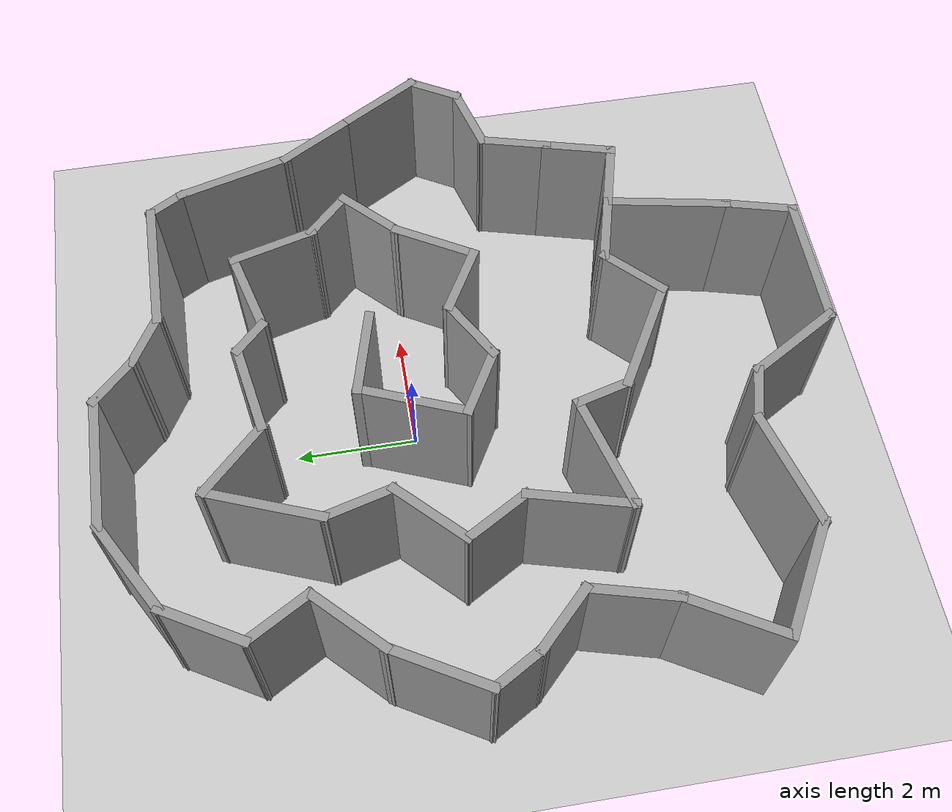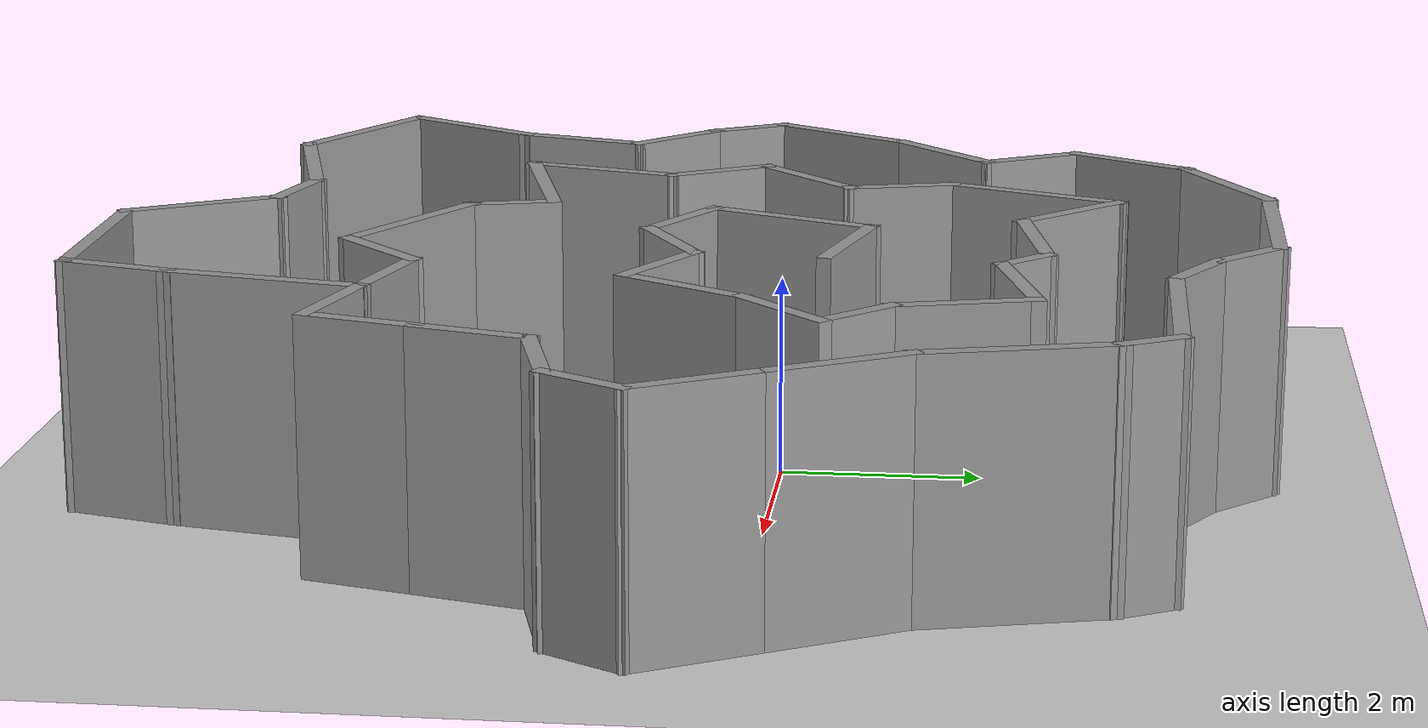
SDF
<sdf version="1.6">
 <world name="default">
  <light name="sun" type="directional">
   <pose>0 0 10 0 -0 0</pose>
   <diffuse>0.8 0.8 0.8 1</diffuse>
   <specular>0.2 0.2 0.2 1</specular>
   <attenuation>
    <range>1000</range>
    <constant>0.9</constant>
    <linear>0.01</linear>
    <quadratic>0.001</quadratic>
   </attenuation>
   <direction>-0.5 0.1 -0.9</direction>
  </light>
  <model name="ground_plane">
   <static>1</static>
   <link name="link">
    <collision name="collision">
     <geometry><plane><normal>0 0 1</normal><size>100 100</size></plane></geometry>
     <surface>
      <contact><collide_bitmask>65535</collide_bitmask></contact>
      <friction><ode><mu>100</mu><mu2>50</mu2></ode></friction>
     </surface>
    </collision>
    <visual name="visual">
     <cast_shadows>0</cast_shadows>
     <geometry><plane><normal>0 0 1</normal><size>100 100</size></plane></geometry>
     <material>
      <script><uri>file://media/materials/scripts/gazebo.material</uri><name>Gazebo/Grey</name></script>
     </material>
    </visual>
   </link>
  </model>
  <gravity>0 0 -9.8</gravity>
  <magnetic_field>6e-06 2.3e-05 -4.2e-05</magnetic_field>
  <atmosphere type="adiabatic"/>
  <physics name="default_physics" default="0" type="ode">
   <max_step_size>0.001</max_step_size>
   <real_time_factor>1</real_time_factor>
   <real_time_update_rate>1000</real_time_update_rate>
  </physics>
  <scene><ambient>0.4 0.4 0.4 1</ambient><background>0.7 0.7 0.7 1</background><shadows>1</shadows></scene>
  <audio><device>default</device></audio>
  <spherical_coordinates>
   <surface_model>EARTH_WGS84</surface_model>
   <latitude_deg>0</latitude_deg>
   <longitude_deg>0</longitude_deg>
   <elevation>0</elevation>
   <heading_deg>0</heading_deg>
  </spherical_coordinates>
  <model name="Spiral">
   <pose>0.29207 -0.91723 0 0 -0 0</pose>
   <link name="Wall_0">
    <collision name="Wall_0_Collision">
     <geometry><box><size>1.5 0.15 2.5</size></box></geometry>
     <pose>0 0 1.25 0 -0 0</pose>
    </collision>
    <visual name="Wall_0_Visual">
     <pose>0 0 1.25 0 -0 0</pose>
     <geometry><box><size>1.5 0.15 2.5</size></box></geometry>
     <material>
      <script><uri>file://media/materials/scripts/gazebo.material</uri><name>Gazebo/Grey</name></script>
      <ambient>1 1 1 1</ambient>
     </material>
     <meta><layer>0</layer></meta>
    </visual>
    <pose>0.104741 1.59903 0 0 -0 2.87979</pose>
   </link>
   <link name="Wall_16">
    <collision name="Wall_16_Collision">
     <geometry><box><size>1.25 0.15 2.5</size></box></geometry>
     <pose>0 0 1.25 0 -0 0</pose>
    </collision>
    <visual name="Wall_16_Visual">
     <pose>0 0 1.25 0 -0 0</pose>
     <geometry><box><size>1.25 0.15 2.5</size></box></geometry>
     <material>
      <script><uri>file://media/materials/scripts/gazebo.material</uri><name>Gazebo/Grey</name></script>
      <ambient>1 1 1 1</ambient>
     </material>
     <meta><layer>0</layer></meta>
    </visual>
    <pose>-0.709713 -0.123137 0 0 -0 -0.523599</pose>
   </link>
   <link name="Wall_17">
    <collision name="Wall_17_Collision">
     <geometry><box><size>1.25 0.15 2.5</size></box></geometry>
     <pose>0 0 1.25 0 -0 0</pose>
    </collision>
    <visual name="Wall_17_Visual">
     <pose>0 0 1.25 0 -0 0</pose>
     <geometry><box><size>1.25 0.15 2.5</size></box></geometry>
     <material>
      <script><uri>file://media/materials/scripts/gazebo.material</uri><name>Gazebo/Grey</name></script>
      <ambient>1 1 1 1</ambient>
     </material>
     <meta><layer>0</layer></meta>
    </visual>
    <pose>0.242915 -0.123137 0 0 -0 0.523599</pose>
   </link>
   <link name="Wall_18">
    <collision name="Wall_18_Collision">
     <geometry><box><size>1.25 0.15 2.5</size></box></geometry>
     <pose>0 0 1.25 0 -0 0</pose>
    </collision>
    <visual name="Wall_18_Visual">
     <pose>0 0 1.25 0 -0 0</pose>
     <geometry><box><size>1.25 0.15 2.5</size></box></geometry>
     <material>
      <script><uri>file://media/materials/scripts/gazebo.material</uri><name>Gazebo/Grey</name></script>
      <ambient>1 1 1 1</ambient>
     </material>
     <meta><layer>0</layer></meta>
    </visual>
    <pose>1.19554 -0.123137 0 0 -0 -0.523599</pose>
   </link>
   <link name="Wall_19">
    <collision name="Wall_19_Collision">
     <geometry><box><size>1.5 0.15 2.5</size></box></geometry>
     <pose>0 0 1.25 0 -0 0</pose>
    </collision>
    <visual name="Wall_19_Visual">
     <pose>0 0 1.25 0 -0 0</pose>
     <geometry><box><size>1.5 0.15 2.5</size></box></geometry>
     <material>
      <script><uri>file://media/materials/scripts/gazebo.material</uri><name>Gazebo/Grey</name></script>
      <ambient>1 1 1 1</ambient>
     </material>
     <meta><layer>0</layer></meta>
    </visual>
    <pose>2.00936 0.18643 0 0 -0 1.0472</pose>
   </link>
   <link name="Wall_20">
    <collision name="Wall_20_Collision">
     <geometry><box><size>1.25 0.15 2.5</size></box></geometry>
     <pose>0 0 1.25 0 -0 0</pose>
    </collision>
    <visual name="Wall_20_Visual">
     <pose>0 0 1.25 0 -0 0</pose>
     <geometry><box><size>1.25 0.15 2.5</size></box></geometry>
     <material>
      <script><uri>file://media/materials/scripts/gazebo.material</uri><name>Gazebo/Grey</name></script>
      <ambient>1 1 1 1</ambient>
     </material>
     <meta><layer>0</layer></meta>
    </visual>
    <pose>2.73577 1.15991 0 0 -0 0.785398</pose>
   </link>
   <link name="Wall_21">
    <collision name="Wall_21_Collision">
     <geometry><box><size>1 0.15 2.5</size></box></geometry>
     <pose>0 0 1.25 0 -0 0</pose>
    </collision>
    <visual name="Wall_21_Visual">
     <pose>0 0 1.25 0 -0 0</pose>
     <geometry><box><size>1 0.15 2.5</size></box></geometry>
     <material>
      <script><uri>file://media/materials/scripts/gazebo.material</uri><name>Gazebo/Grey</name></script>
      <ambient>1 1 1 1</ambient>
     </material>
     <meta><layer>0</layer></meta>
    </visual>
    <pose>2.82415 1.84933 0 0 -0 2.35619</pose>
   </link>
   <link name="Wall_22">
    <collision name="Wall_22_Collision">
     <geometry><box><size>1.5 0.15 2.5</size></box></geometry>
     <pose>0 0 1.25 0 -0 0</pose>
    </collision>
    <visual name="Wall_22_Visual">
     <pose>0 0 1.25 0 -0 0</pose>
     <geometry><box><size>1.5 0.15 2.5</size></box></geometry>
     <material>
      <script><uri>file://media/materials/scripts/gazebo.material</uri><name>Gazebo/Grey</name></script>
      <ambient>1 1 1 1</ambient>
     </material>
     <meta><layer>0</layer></meta>
    </visual>
    <pose>2.34893 2.80186 0 0 -0 1.8326</pose>
   </link>
   <link name="Wall_23">
    <collision name="Wall_23_Collision">
     <geometry><box><size>1.5 0.15 2.5</size></box></geometry>
     <pose>0 0 1.25 0 -0 0</pose>
    </collision>
    <visual name="Wall_23_Visual">
     <pose>0 0 1.25 0 -0 0</pose>
     <geometry><box><size>1.5 0.15 2.5</size></box></geometry>
     <material>
      <script><uri>file://media/materials/scripts/gazebo.material</uri><name>Gazebo/Grey</name></script>
      <ambient>1 1 1 1</ambient>
     </material>
     <meta><layer>0</layer></meta>
    </visual>
    <pose>1.52223 3.27915 0 0 -0 -2.87979</pose>
   </link>
   <link name="Wall_24">
    <collision name="Wall_24_Collision">
     <geometry><box><size>0.75 0.15 2.5</size></box></geometry>
     <pose>0 0 1.25 0 -0 0</pose>
    </collision>
    <visual name="Wall_24_Visual">
     <pose>0 0 1.25 0 -0 0</pose>
     <geometry><box><size>0.75 0.15 2.5</size></box></geometry>
     <material>
      <script><uri>file://media/materials/scripts/gazebo.material</uri><name>Gazebo/Grey</name></script>
      <ambient>1 1 1 1</ambient>
     </material>
     <meta><layer>0</layer></meta>
    </visual>
    <pose>0.658096 3.31658 0 0 -0 2.35619</pose>
   </link>
   <link name="Wall_25">
    <collision name="Wall_25_Collision">
     <geometry><box><size>1.55846 0.15 2.5</size></box></geometry>
     <pose>0 0 1.25 0 -0 0</pose>
    </collision>
    <visual name="Wall_25_Visual">
     <pose>0 0 1.25 0 -0 0</pose>
     <geometry><box><size>1.55846 0.15 2.5</size></box></geometry>
     <material>
      <script><uri>file://media/materials/scripts/gazebo.material</uri><name>Gazebo/Grey</name></script>
      <ambient>1 1 1 1</ambient>
     </material>
     <meta><layer>0</layer></meta>
    </visual>
    <pose>-0.246856 3.40247 0 0 -0 -2.96136</pose>
   </link>
   <link name="Wall_26">
    <collision name="Wall_26_Collision">
     <geometry><box><size>1.5 0.15 2.5</size></box></geometry>
     <pose>0 0 1.25 0 -0 0</pose>
    </collision>
    <visual name="Wall_26_Visual">
     <pose>0 0 1.25 0 -0 0</pose>
     <geometry><box><size>1.5 0.15 2.5</size></box></geometry>
     <material>
      <script><uri>file://media/materials/scripts/gazebo.material</uri><name>Gazebo/Grey</name></script>
      <ambient>1 1 1 1</ambient>
     </material>
     <meta><layer>0</layer></meta>
    </visual>
    <pose>-1.41697 3.73832 0 0 -0 2.35619</pose>
   </link>
   <link name="Wall_27">
    <collision name="Wall_27_Collision">
     <geometry><box><size>1.99459 0.15 2.5</size></box></geometry>
     <pose>0 0 1.25 0 -0 0</pose>
    </collision>
    <visual name="Wall_27_Visual">
     <pose>0 0 1.25 0 -0 0</pose>
     <geometry><box><size>1.99459 0.15 2.5</size></box></geometry>
     <material>
      <script><uri>file://media/materials/scripts/gazebo.material</uri><name>Gazebo/Grey</name></script>
      <ambient>1 1 1 1</ambient>
     </material>
     <meta><layer>0</layer></meta>
    </visual>
    <pose>-2.23177 3.3725 0 0 -0 -1.94543</pose>
   </link>
   <link name="Wall_3">
    <collision name="Wall_3_Collision">
     <geometry><box><size>1.89875 0.15 2.5</size></box></geometry>
     <pose>0 0 1.25 0 -0 0</pose>
    </collision>
    <visual name="Wall_3_Visual">
     <pose>0 0 1.25 0 -0 0</pose>
     <geometry><box><size>1.89875 0.15 2.5</size></box></geometry>
     <material>
      <script><uri>file://media/materials/scripts/gazebo.material</uri><name>Gazebo/Grey</name></script>
      <ambient>1 1 1 1</ambient>
     </material>
     <meta><layer>0</layer></meta>
    </visual>
    <pose>-0.859039 0.962797 0 0 -0 -1.95408</pose>
   </link>
   <link name="Wall_30">
    <collision name="Wall_30_Collision">
     <geometry><box><size>1.25 0.15 2.5</size></box></geometry>
     <pose>0 0 1.25 0 -0 0</pose>
    </collision>
    <visual name="Wall_30_Visual">
     <pose>0 0 1.25 0 -0 0</pose>
     <geometry><box><size>1.25 0.15 2.5</size></box></geometry>
     <material>
      <script><uri>file://media/materials/scripts/gazebo.material</uri><name>Gazebo/Grey</name></script>
      <ambient>1 1 1 1</ambient>
     </material>
     <meta><layer>0</layer></meta>
    </visual>
    <pose>-2.42692 1.98291 0 0 -0 -1.309</pose>
   </link>
   <link name="Wall_31">
    <collision name="Wall_31_Collision">
     <geometry><box><size>1.5 0.15 2.5</size></box></geometry>
     <pose>0 0 1.25 0 -0 0</pose>
    </collision>
    <visual name="Wall_31_Visual">
     <pose>0 0 1.25 0 -0 0</pose>
     <geometry><box><size>1.5 0.15 2.5</size></box></geometry>
     <material>
      <script><uri>file://media/materials/scripts/gazebo.material</uri><name>Gazebo/Grey</name></script>
      <ambient>1 1 1 1</ambient>
     </material>
     <meta><layer>0</layer></meta>
    </visual>
    <pose>-2.76187 0.974358 0 0 -0 -2.35619</pose>
   </link>
   <link name="Wall_32">
    <collision name="Wall_32_Collision">
     <geometry><box><size>1.25 0.15 2.5</size></box></geometry>
     <pose>0 0 1.25 0 -0 0</pose>
    </collision>
    <visual name="Wall_32_Visual">
     <pose>0 0 1.25 0 -0 0</pose>
     <geometry><box><size>1.25 0.15 2.5</size></box></geometry>
     <material>
      <script><uri>file://media/materials/scripts/gazebo.material</uri><name>Gazebo/Grey</name></script>
      <ambient>1 1 1 1</ambient>
     </material>
     <meta><layer>0</layer></meta>
    </visual>
    <pose>-2.96416 0.020747 0 0 -0 -1.0472</pose>
   </link>
   <link name="Wall_33">
    <collision name="Wall_33_Collision">
     <geometry><box><size>1.75 0.15 2.5</size></box></geometry>
     <pose>0 0 1.25 0 -0 0</pose>
    </collision>
    <visual name="Wall_33_Visual">
     <pose>0 0 1.25 0 -0 0</pose>
     <geometry><box><size>1.75 0.15 2.5</size></box></geometry>
     <material>
      <script><uri>file://media/materials/scripts/gazebo.material</uri><name>Gazebo/Grey</name></script>
      <ambient>1 1 1 1</ambient>
     </material>
     <meta><layer>0</layer></meta>
    </visual>
    <pose>-2.89622 -1.22831 0 0 -0 -1.8326</pose>
   </link>
   <link name="Wall_34">
    <collision name="Wall_34_Collision">
     <geometry><box><size>2 0.15 2.5</size></box></geometry>
     <pose>0 0 1.25 0 -0 0</pose>
    </collision>
    <visual name="Wall_34_Visual">
     <pose>0 0 1.25 0 -0 0</pose>
     <geometry><box><size>2 0.15 2.5</size></box></geometry>
     <material>
      <script><uri>file://media/materials/scripts/gazebo.material</uri><name>Gazebo/Grey</name></script>
      <ambient>1 1 1 1</ambient>
     </material>
     <meta><layer>0</layer></meta>
    </visual>
    <pose>-2.20979 -1.76164 0 0 -0 0.261799</pose>
   </link>
   <link name="Wall_35">
    <collision name="Wall_35_Collision">
     <geometry><box><size>1 0.15 2.5</size></box></geometry>
     <pose>0 0 1.25 0 -0 0</pose>
    </collision>
    <visual name="Wall_35_Visual">
     <pose>0 0 1.25 0 -0 0</pose>
     <geometry><box><size>1 0.15 2.5</size></box></geometry>
     <material>
      <script><uri>file://media/materials/scripts/gazebo.material</uri><name>Gazebo/Grey</name></script>
      <ambient>1 1 1 1</ambient>
     </material>
     <meta><layer>0</layer></meta>
    </visual>
    <pose>-1.20631 -1.93275 0 0 -0 -1.309</pose>
   </link>
   <link name="Wall_36">
    <collision name="Wall_36_Collision">
     <geometry><box><size>2 0.15 2.5</size></box></geometry>
     <pose>0 0 1.25 0 -0 0</pose>
    </collision>
    <visual name="Wall_36_Visual">
     <pose>0 0 1.25 0 -0 0</pose>
     <geometry><box><size>2 0.15 2.5</size></box></geometry>
     <material>
      <script><uri>file://media/materials/scripts/gazebo.material</uri><name>Gazebo/Grey</name></script>
      <ambient>1 1 1 1</ambient>
     </material>
     <meta><layer>0</layer></meta>
    </visual>
    <pose>-0.295242 -2.80577 0 0 -0 -0.523599</pose>
   </link>
   <link name="Wall_37">
    <collision name="Wall_37_Collision">
     <geometry><box><size>1.25 0.15 2.5</size></box></geometry>
     <pose>0 0 1.25 0 -0 0</pose>
    </collision>
    <visual name="Wall_37_Visual">
     <pose>0 0 1.25 0 -0 0</pose>
     <geometry><box><size>1.25 0.15 2.5</size></box></geometry>
     <material>
      <script><uri>file://media/materials/scripts/gazebo.material</uri><name>Gazebo/Grey</name></script>
      <ambient>1 1 1 1</ambient>
     </material>
     <meta><layer>0</layer></meta>
    </visual>
    <pose>0.89474 -2.87936 0 0 -0 0.785398</pose>
   </link>
   <link name="Wall_38">
    <collision name="Wall_38_Collision">
     <geometry><box><size>1.25 0.15 2.5</size></box></geometry>
     <pose>0 0 1.25 0 -0 0</pose>
    </collision>
    <visual name="Wall_38_Visual">
     <pose>0 0 1.25 0 -0 0</pose>
     <geometry><box><size>1.25 0.15 2.5</size></box></geometry>
     <material>
      <script><uri>file://media/materials/scripts/gazebo.material</uri><name>Gazebo/Grey</name></script>
      <ambient>1 1 1 1</ambient>
     </material>
     <meta><layer>0</layer></meta>
    </visual>
    <pose>1.81491 -2.6328 0 0 -0 -0.261799</pose>
   </link>
   <link name="Wall_39">
    <collision name="Wall_39_Collision">
     <geometry><box><size>1.25 0.15 2.5</size></box></geometry>
     <pose>0 0 1.25 0 -0 0</pose>
    </collision>
    <visual name="Wall_39_Visual">
     <pose>0 0 1.25 0 -0 0</pose>
     <geometry><box><size>1.25 0.15 2.5</size></box></geometry>
     <material>
      <script><uri>file://media/materials/scripts/gazebo.material</uri><name>Gazebo/Grey</name></script>
      <ambient>1 1 1 1</ambient>
     </material>
     <meta><layer>0</layer></meta>
    </visual>
    <pose>2.87743 -2.9175 0 0 -0 -0.261799</pose>
   </link>
   <link name="Wall_40">
    <collision name="Wall_40_Collision">
     <geometry><box><size>1.25 0.15 2.5</size></box></geometry>
     <pose>0 0 1.25 0 -0 0</pose>
    </collision>
    <visual name="Wall_40_Visual">
     <pose>0 0 1.25 0 -0 0</pose>
     <geometry><box><size>1.25 0.15 2.5</size></box></geometry>
     <material>
      <script><uri>file://media/materials/scripts/gazebo.material</uri><name>Gazebo/Grey</name></script>
      <ambient>1 1 1 1</ambient>
     </material>
     <meta><layer>0</layer></meta>
    </visual>
    <pose>3.55104 -2.5286 0 0 -0 1.309</pose>
   </link>
   <link name="Wall_41">
    <collision name="Wall_41_Collision">
     <geometry><box><size>1.25 0.15 2.5</size></box></geometry>
     <pose>0 0 1.25 0 -0 0</pose>
    </collision>
    <visual name="Wall_41_Visual">
     <pose>0 0 1.25 0 -0 0</pose>
     <geometry><box><size>1.25 0.15 2.5</size></box></geometry>
     <material>
      <script><uri>file://media/materials/scripts/gazebo.material</uri><name>Gazebo/Grey</name></script>
      <ambient>1 1 1 1</ambient>
     </material>
     <meta><layer>0</layer></meta>
    </visual>
    <pose>3.83574 -1.46608 0 0 -0 1.309</pose>
   </link>
   <link name="Wall_42">
    <collision name="Wall_42_Collision">
     <geometry><box><size>1.25 0.15 2.5</size></box></geometry>
     <pose>0 0 1.25 0 -0 0</pose>
    </collision>
    <visual name="Wall_42_Visual">
     <pose>0 0 1.25 0 -0 0</pose>
     <geometry><box><size>1.25 0.15 2.5</size></box></geometry>
     <material>
      <script><uri>file://media/materials/scripts/gazebo.material</uri><name>Gazebo/Grey</name></script>
      <ambient>1 1 1 1</ambient>
     </material>
     <meta><layer>0</layer></meta>
    </visual>
    <pose>4.50935 -0.792467 0 0 -0 0.261799</pose>
   </link>
   <link name="Wall_43">
    <collision name="Wall_43_Collision">
     <geometry><box><size>1 0.15 2.5</size></box></geometry>
     <pose>0 0 1.25 0 -0 0</pose>
    </collision>
    <visual name="Wall_43_Visual">
     <pose>0 0 1.25 0 -0 0</pose>
     <geometry><box><size>1 0.15 2.5</size></box></geometry>
     <material>
      <script><uri>file://media/materials/scripts/gazebo.material</uri><name>Gazebo/Grey</name></script>
      <ambient>1 1 1 1</ambient>
     </material>
     <meta><layer>0</layer></meta>
    </visual>
    <pose>5.25311 -0.282056 0 0 -0 1.0472</pose>
   </link>
   <link name="Wall_44">
    <collision name="Wall_44_Collision">
     <geometry><box><size>1.5 0.15 2.5</size></box></geometry>
     <pose>0 0 1.25 0 -0 0</pose>
    </collision>
    <visual name="Wall_44_Visual">
     <pose>0 0 1.25 0 -0 0</pose>
     <geometry><box><size>1.5 0.15 2.5</size></box></geometry>
     <material>
      <script><uri>file://media/materials/scripts/gazebo.material</uri><name>Gazebo/Grey</name></script>
      <ambient>1 1 1 1</ambient>
     </material>
     <meta><layer>0</layer></meta>
    </visual>
    <pose>5.12811 0.670572 0 0 -0 2.0944</pose>
   </link>
   <link name="Wall_45">
    <collision name="Wall_45_Collision">
     <geometry><box><size>1.5 0.15 2.5</size></box></geometry>
     <pose>0 0 1.25 0 -0 0</pose>
    </collision>
    <visual name="Wall_45_Visual">
     <pose>0 0 1.25 0 -0 0</pose>
     <geometry><box><size>1.5 0.15 2.5</size></box></geometry>
     <material>
      <script><uri>file://media/materials/scripts/gazebo.material</uri><name>Gazebo/Grey</name></script>
      <ambient>1 1 1 1</ambient>
     </material>
     <meta><layer>0</layer></meta>
    </visual>
    <pose>4.45311 1.83971 0 0 -0 2.0944</pose>
   </link>
   <link name="Wall_46">
    <collision name="Wall_46_Collision">
     <geometry><box><size>2 0.15 2.5</size></box></geometry>
     <pose>0 0 1.25 0 -0 0</pose>
    </collision>
    <visual name="Wall_46_Visual">
     <pose>0 0 1.25 0 -0 0</pose>
     <geometry><box><size>2 0.15 2.5</size></box></geometry>
     <material>
      <script><uri>file://media/materials/scripts/gazebo.material</uri><name>Gazebo/Grey</name></script>
      <ambient>1 1 1 1</ambient>
     </material>
     <meta><layer>0</layer></meta>
    </visual>
    <pose>3.8762 3.31776 0 0 -0 1.8326</pose>
   </link>
   <link name="Wall_47">
    <collision name="Wall_47_Collision">
     <geometry><box><size>0.75 0.15 2.5</size></box></geometry>
     <pose>0 0 1.25 0 -0 0</pose>
    </collision>
    <visual name="Wall_47_Visual">
     <pose>0 0 1.25 0 -0 0</pose>
     <geometry><box><size>0.75 0.15 2.5</size></box></geometry>
     <material>
      <script><uri>file://media/materials/scripts/gazebo.material</uri><name>Gazebo/Grey</name></script>
      <ambient>1 1 1 1</ambient>
     </material>
     <meta><layer>0</layer></meta>
    </visual>
    <pose>3.48679 4.47104 0 0 -0 2.0944</pose>
   </link>
   <link name="Wall_48">
    <collision name="Wall_48_Collision">
     <geometry><box><size>2.25 0.15 2.5</size></box></geometry>
     <pose>0 0 1.25 0 -0 0</pose>
    </collision>
    <visual name="Wall_48_Visual">
     <pose>0 0 1.25 0 -0 0</pose>
     <geometry><box><size>2.25 0.15 2.5</size></box></geometry>
     <material>
      <script><uri>file://media/materials/scripts/gazebo.material</uri><name>Gazebo/Grey</name></script>
      <ambient>1 1 1 1</ambient>
     </material>
     <meta><layer>0</layer></meta>
    </visual>
    <pose>2.28679 4.73085 0 0 -0 3.14159</pose>
   </link>
   <link name="Wall_49">
    <collision name="Wall_49_Collision">
     <geometry><box><size>1 0.15 2.5</size></box></geometry>
     <pose>0 0 1.25 0 -0 0</pose>
    </collision>
    <visual name="Wall_49_Visual">
     <pose>0 0 1.25 0 -0 0</pose>
     <geometry><box><size>1 0.15 2.5</size></box></geometry>
     <material>
      <script><uri>file://media/materials/scripts/gazebo.material</uri><name>Gazebo/Grey</name></script>
      <ambient>1 1 1 1</ambient>
     </material>
     <meta><layer>0</layer></meta>
    </visual>
    <pose>0.86873 4.94335 0 0 -0 2.61799</pose>
   </link>
   <link name="Wall_50">
    <collision name="Wall_50_Collision">
     <geometry><box><size>1 0.15 2.5</size></box></geometry>
     <pose>0 0 1.25 0 -0 0</pose>
    </collision>
    <visual name="Wall_50_Visual">
     <pose>0 0 1.25 0 -0 0</pose>
     <geometry><box><size>1 0.15 2.5</size></box></geometry>
     <material>
      <script><uri>file://media/materials/scripts/gazebo.material</uri><name>Gazebo/Grey</name></script>
      <ambient>1 1 1 1</ambient>
     </material>
     <meta><layer>0</layer></meta>
    </visual>
    <pose>0.200149 5.45637 0 0 -0 2.35619</pose>
   </link>
   <link name="Wall_51">
    <collision name="Wall_51_Collision">
     <geometry><box><size>2.25 0.15 2.5</size></box></geometry>
     <pose>0 0 1.25 0 -0 0</pose>
    </collision>
    <visual name="Wall_51_Visual">
     <pose>0 0 1.25 0 -0 0</pose>
     <geometry><box><size>2.25 0.15 2.5</size></box></geometry>
     <material>
      <script><uri>file://media/materials/scripts/gazebo.material</uri><name>Gazebo/Grey</name></script>
      <ambient>1 1 1 1</ambient>
     </material>
     <meta><layer>0</layer></meta>
    </visual>
    <pose>-1.15037 5.75689 0 0 -0 3.14159</pose>
   </link>
   <link name="Wall_52">
    <collision name="Wall_52_Collision">
     <geometry><box><size>1.75 0.15 2.5</size></box></geometry>
     <pose>0 0 1.25 0 -0 0</pose>
    </collision>
    <visual name="Wall_52_Visual">
     <pose>0 0 1.25 0 -0 0</pose>
     <geometry><box><size>1.75 0.15 2.5</size></box></geometry>
     <material>
      <script><uri>file://media/materials/scripts/gazebo.material</uri><name>Gazebo/Grey</name></script>
      <ambient>1 1 1 1</ambient>
     </material>
     <meta><layer>0</layer></meta>
    </visual>
    <pose>-2.89319 5.35689 0 0 -0 -2.61799</pose>
   </link>
   <link name="Wall_53">
    <collision name="Wall_53_Collision">
     <geometry><box><size>1.5 0.15 2.5</size></box></geometry>
     <pose>0 0 1.25 0 -0 0</pose>
    </collision>
    <visual name="Wall_53_Visual">
     <pose>0 0 1.25 0 -0 0</pose>
     <geometry><box><size>1.5 0.15 2.5</size></box></geometry>
     <material>
      <script><uri>file://media/materials/scripts/gazebo.material</uri><name>Gazebo/Grey</name></script>
      <ambient>1 1 1 1</ambient>
     </material>
     <meta><layer>0</layer></meta>
    </visual>
    <pose>-3.92351 4.37233 0 0 -0 -2.0944</pose>
   </link>
   <link name="Wall_54">
    <collision name="Wall_54_Collision">
     <geometry><box><size>1.25 0.15 2.5</size></box></geometry>
     <pose>0 0 1.25 0 -0 0</pose>
    </collision>
    <visual name="Wall_54_Visual">
     <pose>0 0 1.25 0 -0 0</pose>
     <geometry><box><size>1.25 0.15 2.5</size></box></geometry>
     <material>
      <script><uri>file://media/materials/scripts/gazebo.material</uri><name>Gazebo/Grey</name></script>
      <ambient>1 1 1 1</ambient>
     </material>
     <meta><layer>0</layer></meta>
    </visual>
    <pose>-3.98601 3.31144 0 0 -0 -1.0472</pose>
   </link>
   <link name="Wall_55">
    <collision name="Wall_55_Collision">
     <geometry><box><size>1.5 0.15 2.5</size></box></geometry>
     <pose>0 0 1.25 0 -0 0</pose>
    </collision>
    <visual name="Wall_55_Visual">
     <pose>0 0 1.25 0 -0 0</pose>
     <geometry><box><size>1.5 0.15 2.5</size></box></geometry>
     <material>
      <script><uri>file://media/materials/scripts/gazebo.material</uri><name>Gazebo/Grey</name></script>
      <ambient>1 1 1 1</ambient>
     </material>
     <meta><layer>0</layer></meta>
    </visual>
    <pose>-4.18831 2.35783 0 0 -0 -2.35619</pose>
   </link>
   <link name="Wall_56">
    <collision name="Wall_56_Collision">
     <geometry><box><size>1.75 0.15 2.5</size></box></geometry>
     <pose>0 0 1.25 0 -0 0</pose>
    </collision>
    <visual name="Wall_56_Visual">
     <pose>0 0 1.25 0 -0 0</pose>
     <geometry><box><size>1.75 0.15 2.5</size></box></geometry>
     <material>
      <script><uri>file://media/materials/scripts/gazebo.material</uri><name>Gazebo/Grey</name></script>
      <ambient>1 1 1 1</ambient>
     </material>
     <meta><layer>0</layer></meta>
    </visual>
    <pose>-5.06561 1.18772 0 0 -0 -2.0944</pose>
   </link>
   <link name="Wall_57">
    <collision name="Wall_57_Collision">
     <geometry><box><size>1 0.15 2.5</size></box></geometry>
     <pose>0 0 1.25 0 -0 0</pose>
    </collision>
    <visual name="Wall_57_Visual">
     <pose>0 0 1.25 0 -0 0</pose>
     <geometry><box><size>1 0.15 2.5</size></box></geometry>
     <material>
      <script><uri>file://media/materials/scripts/gazebo.material</uri><name>Gazebo/Grey</name></script>
      <ambient>1 1 1 1</ambient>
     </material>
     <meta><layer>0</layer></meta>
    </visual>
    <pose>-5.25311 0.126834 0 0 -0 -1.0472</pose>
   </link>
   <link name="Wall_58">
    <collision name="Wall_58_Collision">
     <geometry><box><size>1.25 0.15 2.5</size></box></geometry>
     <pose>0 0 1.25 0 -0 0</pose>
    </collision>
    <visual name="Wall_58_Visual">
     <pose>0 0 1.25 0 -0 0</pose>
     <geometry><box><size>1.25 0.15 2.5</size></box></geometry>
     <material>
      <script><uri>file://media/materials/scripts/gazebo.material</uri><name>Gazebo/Grey</name></script>
      <ambient>1 1 1 1</ambient>
     </material>
     <meta><layer>0</layer></meta>
    </visual>
    <pose>-4.6517 -0.630135 0 0 -0 -0.785398</pose>
   </link>
   <link name="Wall_59">
    <collision name="Wall_59_Collision">
     <geometry><box><size>1.5 0.15 2.5</size></box></geometry>
     <pose>0 0 1.25 0 -0 0</pose>
    </collision>
    <visual name="Wall_59_Visual">
     <pose>0 0 1.25 0 -0 0</pose>
     <geometry><box><size>1.5 0.15 2.5</size></box></geometry>
     <material>
      <script><uri>file://media/materials/scripts/gazebo.material</uri><name>Gazebo/Grey</name></script>
      <ambient>1 1 1 1</ambient>
     </material>
     <meta><layer>0</layer></meta>
    </visual>
    <pose>-4.43749 -1.67104 0 0 -0 -1.8326</pose>
   </link>
   <link name="Wall_60">
    <collision name="Wall_60_Collision">
     <geometry><box><size>1.75 0.15 2.5</size></box></geometry>
     <pose>0 0 1.25 0 -0 0</pose>
    </collision>
    <visual name="Wall_60_Visual">
     <pose>0 0 1.25 0 -0 0</pose>
     <geometry><box><size>1.75 0.15 2.5</size></box></geometry>
     <material>
      <script><uri>file://media/materials/scripts/gazebo.material</uri><name>Gazebo/Grey</name></script>
      <ambient>1 1 1 1</ambient>
     </material>
     <meta><layer>0</layer></meta>
    </visual>
    <pose>-5.01219 -3.01586 0 0 -0 -2.0944</pose>
   </link>
   <link name="Wall_61">
    <collision name="Wall_61_Collision">
     <geometry><box><size>2 0.15 2.5</size></box></geometry>
     <pose>0 0 1.25 0 -0 0</pose>
    </collision>
    <visual name="Wall_61_Visual">
     <pose>0 0 1.25 0 -0 0</pose>
     <geometry><box><size>2 0.15 2.5</size></box></geometry>
     <material>
      <script><uri>file://media/materials/scripts/gazebo.material</uri><name>Gazebo/Grey</name></script>
      <ambient>1 1 1 1</ambient>
     </material>
     <meta><layer>0</layer></meta>
    </visual>
    <pose>-4.61112 -4.17119 0 0 -0 -0.523599</pose>
   </link>
   <link name="Wall_62">
    <collision name="Wall_62_Collision">
     <geometry><box><size>2 0.15 2.5</size></box></geometry>
     <pose>0 0 1.25 0 -0 0</pose>
    </collision>
    <visual name="Wall_62_Visual">
     <pose>0 0 1.25 0 -0 0</pose>
     <geometry><box><size>2 0.15 2.5</size></box></geometry>
     <material>
      <script><uri>file://media/materials/scripts/gazebo.material</uri><name>Gazebo/Grey</name></script>
      <ambient>1 1 1 1</ambient>
     </material>
     <meta><layer>0</layer></meta>
    </visual>
    <pose>-2.91657 -4.39428 0 0 -0 0.261799</pose>
   </link>
   <link name="Wall_63">
    <collision name="Wall_63_Collision">
     <geometry><box><size>1 0.15 2.5</size></box></geometry>
     <pose>0 0 1.25 0 -0 0</pose>
    </collision>
    <visual name="Wall_63_Visual">
     <pose>0 0 1.25 0 -0 0</pose>
     <geometry><box><size>1 0.15 2.5</size></box></geometry>
     <material>
      <script><uri>file://media/materials/scripts/gazebo.material</uri><name>Gazebo/Grey</name></script>
      <ambient>1 1 1 1</ambient>
     </material>
     <meta><layer>0</layer></meta>
    </visual>
    <pose>-1.61257 -4.26487 0 0 -0 -0.261799</pose>
   </link>
   <link name="Wall_64">
    <collision name="Wall_64_Collision">
     <geometry><box><size>1.75 0.15 2.5</size></box></geometry>
     <pose>0 0 1.25 0 -0 0</pose>
    </collision>
    <visual name="Wall_64_Visual">
     <pose>0 0 1.25 0 -0 0</pose>
     <geometry><box><size>1.75 0.15 2.5</size></box></geometry>
     <material>
      <script><uri>file://media/materials/scripts/gazebo.material</uri><name>Gazebo/Grey</name></script>
      <ambient>1 1 1 1</ambient>
     </material>
     <meta><layer>0</layer></meta>
    </visual>
    <pose>-0.802048 -5.06769 0 0 -0 -1.0472</pose>
   </link>
   <link name="Wall_65">
    <collision name="Wall_65_Collision">
     <geometry><box><size>2.25 0.15 2.5</size></box></geometry>
     <pose>0 0 1.25 0 -0 0</pose>
    </collision>
    <visual name="Wall_65_Visual">
     <pose>0 0 1.25 0 -0 0</pose>
     <geometry><box><size>2.25 0.15 2.5</size></box></geometry>
     <material>
      <script><uri>file://media/materials/scripts/gazebo.material</uri><name>Gazebo/Grey</name></script>
      <ambient>1 1 1 1</ambient>
     </material>
     <meta><layer>0</layer></meta>
    </visual>
    <pose>0.647952 -5.76051 0 0 -0 0</pose>
   </link>
   <link name="Wall_66">
    <collision name="Wall_66_Collision">
     <geometry><box><size>1.25 0.15 2.5</size></box></geometry>
     <pose>0 0 1.25 0 -0 0</pose>
    </collision>
    <visual name="Wall_66_Visual">
     <pose>0 0 1.25 0 -0 0</pose>
     <geometry><box><size>1.25 0.15 2.5</size></box></geometry>
     <material>
      <script><uri>file://media/materials/scripts/gazebo.material</uri><name>Gazebo/Grey</name></script>
      <ambient>1 1 1 1</ambient>
     </material>
     <meta><layer>0</layer></meta>
    </visual>
    <pose>1.8403 -5.22925 0 0 -0 1.309</pose>
   </link>
   <link name="Wall_67">
    <collision name="Wall_67_Collision">
     <geometry><box><size>2.10689 0.15 2.5</size></box></geometry>
     <pose>0 0 1.25 0 -0 0</pose>
    </collision>
    <visual name="Wall_67_Visual">
     <pose>0 0 1.25 0 -0 0</pose>
     <geometry><box><size>2.10689 0.15 2.5</size></box></geometry>
     <material>
      <script><uri>file://media/materials/scripts/gazebo.material</uri><name>Gazebo/Grey</name></script>
      <ambient>1 1 1 1</ambient>
     </material>
     <meta><layer>0</layer></meta>
    </visual>
    <pose>2.16441 -3.73657 0 0 -0 1.38395</pose>
   </link>
   <static>1</static>
  </model>
 </world>
</sdf>
